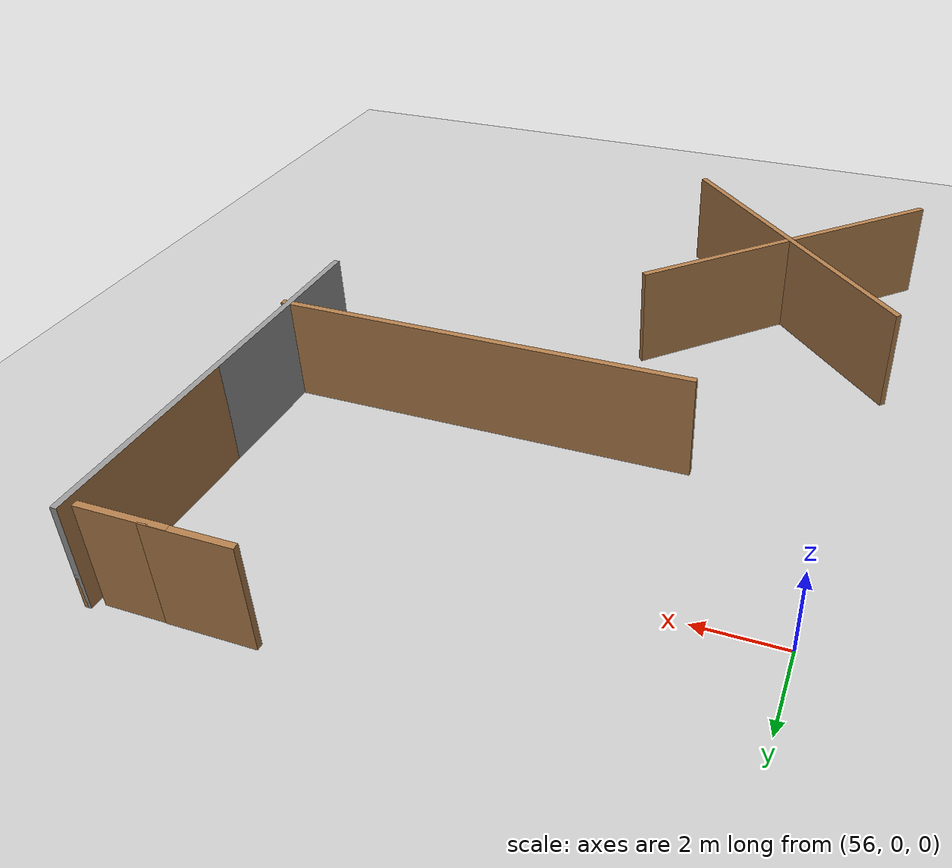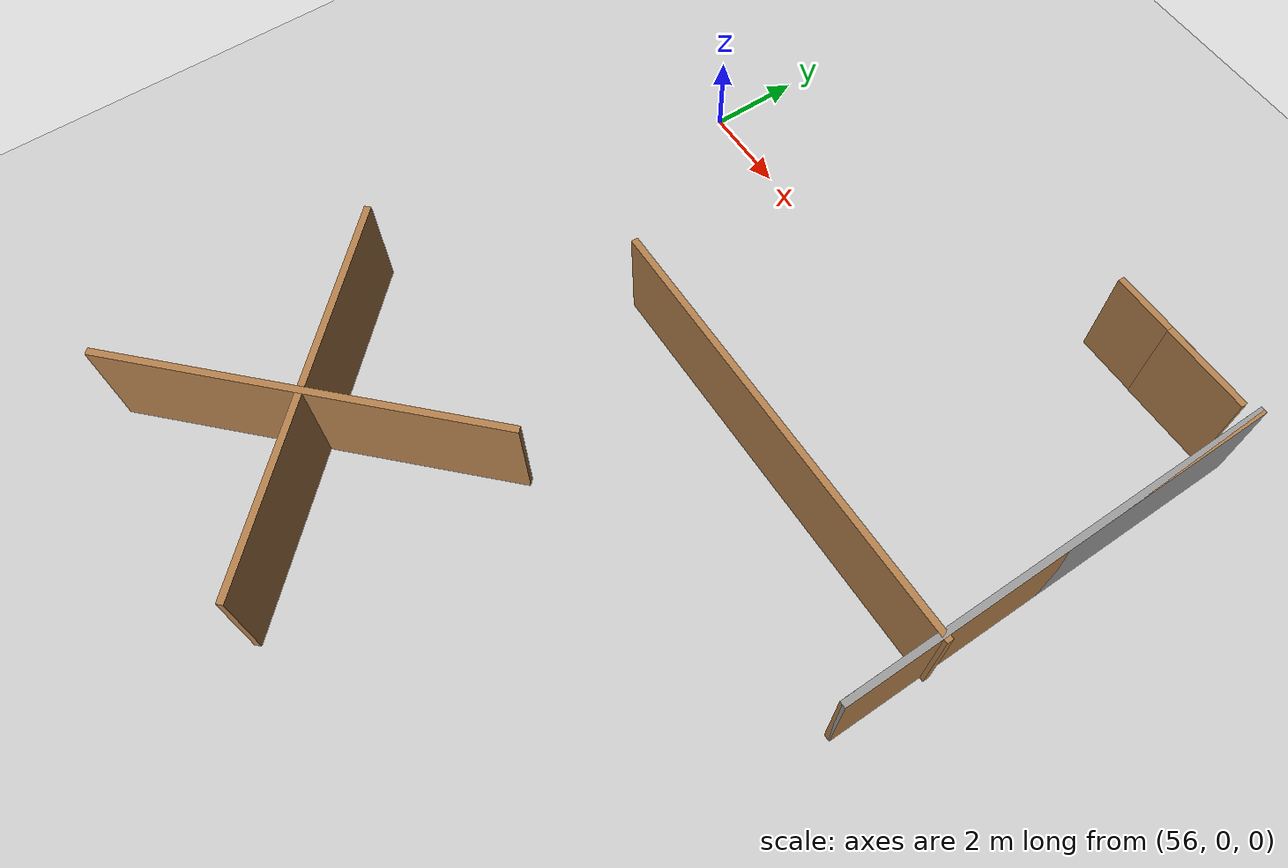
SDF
<sdf version="1.6">
 <world name="default">
  <model name="ground_plane">
   <static>1</static>
   <link name="link">
    <collision name="collision">
     <geometry><plane><normal>0 0 1</normal><size>100 100</size></plane></geometry>
     <surface><friction><ode><mu>100</mu><mu2>50</mu2></ode></friction></surface>
    </collision>
    <visual name="visual">
     <cast_shadows>0</cast_shadows>
     <geometry><plane><normal>0 0 1</normal><size>100 100</size></plane></geometry>
     <material>
      <script><uri>file://media/materials/scripts/gazebo.material</uri><name>Gazebo/Grey</name></script>
     </material>
    </visual>
   </link>
  </model>
  <model name="obs3_17">
   <pose>58.4277 -11.5565 0 0 -0 0</pose>
   <link name="Wall_0">
    <collision name="Wall_0_Collision">
     <geometry><box><size>8.63528 0.15 2.5</size></box></geometry>
     <pose>0 0 1.25 0 -0 0</pose>
    </collision>
    <visual name="Wall_0_Visual">
     <pose>0 0 1.25 0 -0 0</pose>
     <geometry><box><size>8.63528 0.15 2.5</size></box></geometry>
     <material>
      <script><uri>file://media/materials/scripts/gazebo.material</uri><name>Gazebo/Wood</name></script>
      <ambient>1 1 1 1</ambient>
     </material>
    </visual>
    <pose>0 0 0 0 0 -0.785398</pose>
   </link>
   <link name="Wall_2">
    <collision name="Wall_2_Collision">
     <geometry><box><size>8.63528 0.15 2.5</size></box></geometry>
     <pose>0 0 1.25 0 -0 0</pose>
    </collision>
    <visual name="Wall_2_Visual">
     <pose>0 0 1.25 0 -0 0</pose>
     <geometry><box><size>8.63528 0.15 2.5</size></box></geometry>
     <material>
      <script><uri>file://media/materials/scripts/gazebo.material</uri><name>Gazebo/Wood</name></script>
      <ambient>1 1 1 1</ambient>
     </material>
    </visual>
    <pose>0 0 0 0 0 -2.35619</pose>
   </link>
   <static>1</static>
  </model>
  <model name="wall-10m-amodi">
   <pose>68.9301 -1.61169 0 0 -0 0</pose>
   <link name="Wall_24">
    <collision name="Wall_24_Collision">
     <geometry><box><size>10 0.15 2.5</size></box></geometry>
     <pose>0 0 1.25 0 -0 0</pose>
    </collision>
    <visual name="Wall_24_Visual">
     <pose>0 0 1.25 0 -0 0</pose>
     <geometry><box><size>10 0.15 2.5</size></box></geometry>
     <material>
      <script><uri>file://media/materials/scripts/gazebo.material</uri><name>Gazebo/Grey</name></script>
      <ambient>1 1 1 1</ambient>
     </material>
    </visual>
    <pose>0 -0 0 0 0 -1.5708</pose>
   </link>
   <link name="Wall_25">
    <collision name="Wall_25_Collision">
     <geometry><box><size>10 0.15 2.5</size></box></geometry>
     <pose>0 0 1.25 0 -0 0</pose>
    </collision>
    <visual name="Wall_25_Visual">
     <pose>0 0 1.25 0 -0 0</pose>
     <geometry><box><size>10 0.15 2.5</size></box></geometry>
     <material>
      <script><uri>file://media/materials/scripts/gazebo.material</uri><name>Gazebo/Wood</name></script>
      <ambient>1 1 1 1</ambient>
     </material>
    </visual>
    <pose>0 -0 0 0 -0 1.5708</pose>
   </link>
   <static>1</static>
  </model>
  <model name="wall-10m-ofoghi_0">
   <pose>64.0999 -4.39334 0 0 -0 0</pose>
   <link name="Wall_22">
    <collision name="Wall_22_Collision">
     <geometry><box><size>10 0.15 2.5</size></box></geometry>
     <pose>0 0 1.25 0 -0 0</pose>
    </collision>
    <visual name="Wall_22_Visual">
     <pose>0 0 1.25 0 -0 0</pose>
     <geometry><box><size>10 0.15 2.5</size></box></geometry>
     <material>
      <script><uri>file://media/materials/scripts/gazebo.material</uri><name>Gazebo/Wood</name></script>
      <ambient>1 1 1 1</ambient>
     </material>
    </visual>
   </link>
   <static>1</static>
  </model>
  <model name="tr_maze_lay_1">
   <pose>67.6612 3.14732 0 0 -0 0</pose>
   <link name="Wall_21">
    <collision name="Wall_21_Collision">
     <geometry><box><size>2 0.15 2.5</size></box></geometry>
     <pose>0 0 1.25 0 -0 0</pose>
    </collision>
    <visual name="Wall_21_Visual">
     <pose>0 0 1.25 0 -0 0</pose>
     <geometry><box><size>2 0.15 2.5</size></box></geometry>
     <material>
      <script><uri>file://media/materials/scripts/gazebo.material</uri><name>Gazebo/Wood</name></script>
      <ambient>1 1 1 1</ambient>
     </material>
    </visual>
    <pose>0 0 0 0 -0 3.14159</pose>
   </link>
   <static>1</static>
  </model>
  <model name="tr_maze_lay_1_0">
   <pose>66.2732 3.15633 0 0 -0 0</pose>
   <link name="Wall_21">
    <collision name="Wall_21_Collision">
     <geometry><box><size>2 0.15 2.5</size></box></geometry>
     <pose>0 0 1.25 0 -0 0</pose>
    </collision>
    <visual name="Wall_21_Visual">
     <pose>0 0 1.25 0 -0 0</pose>
     <geometry><box><size>2 0.15 2.5</size></box></geometry>
     <material>
      <script><uri>file://media/materials/scripts/gazebo.material</uri><name>Gazebo/Wood</name></script>
      <ambient>1 1 1 1</ambient>
     </material>
    </visual>
    <pose>0 0 0 0 -0 3.14159</pose>
   </link>
   <static>1</static>
  </model>
 </world>
</sdf>
